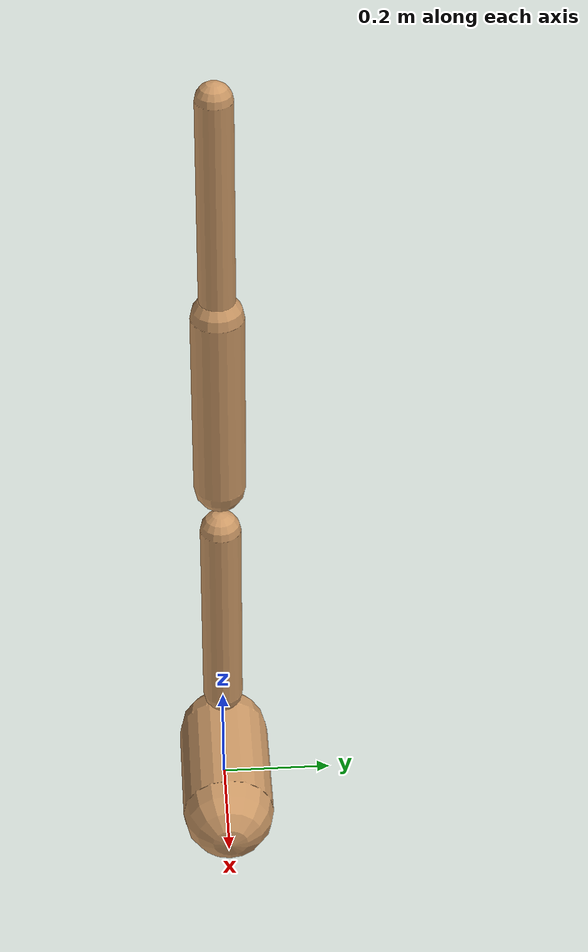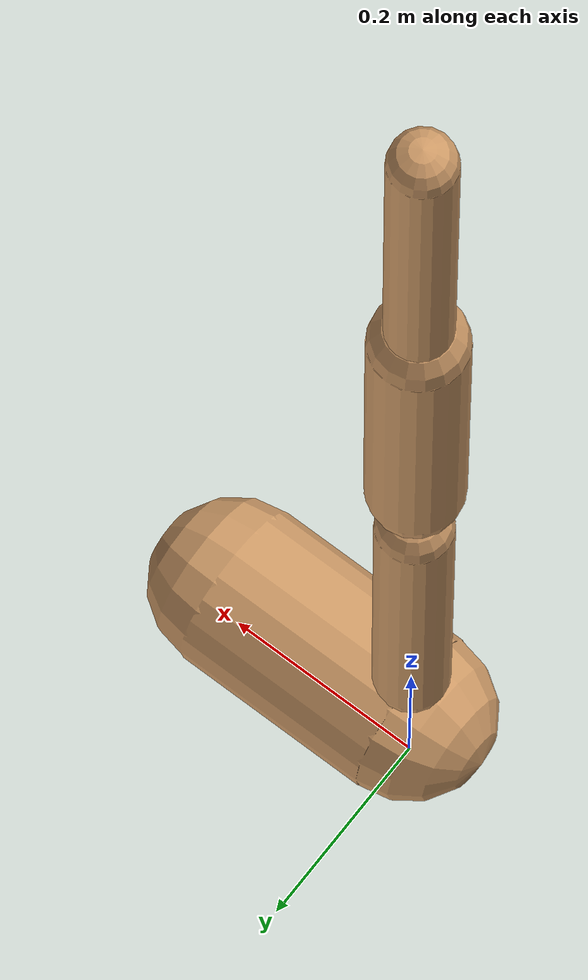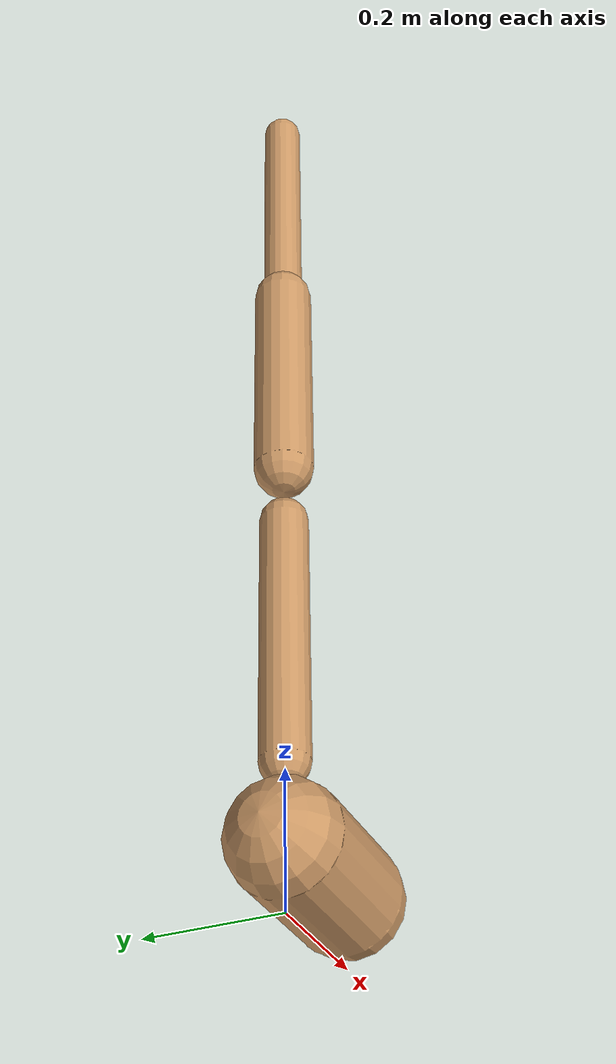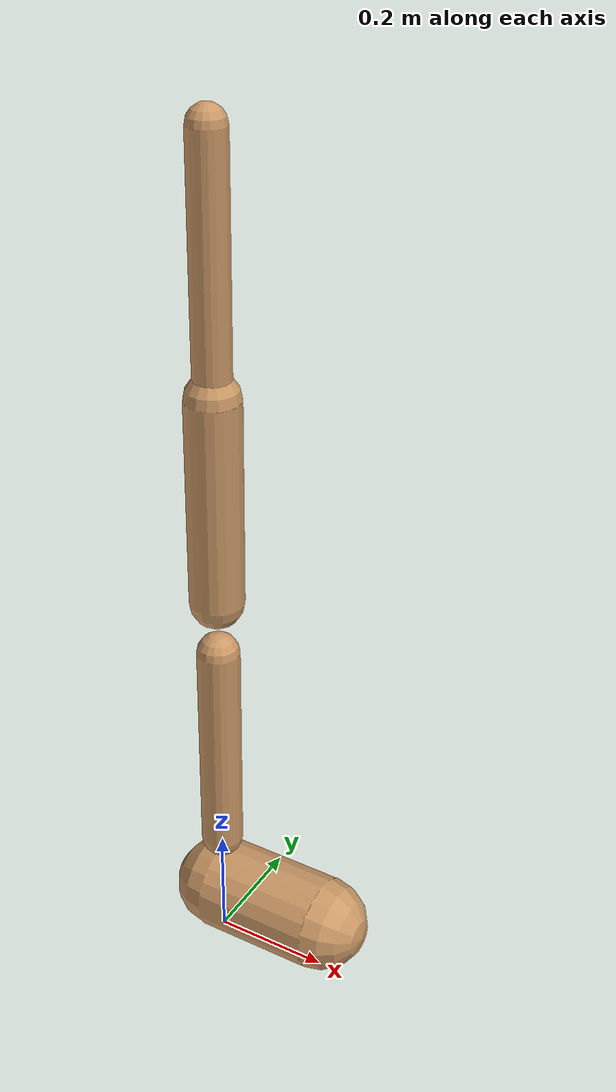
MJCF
<mujoco model="walker2d">
  <compiler angle="degree" coordinate="global" inertiafromgeom="true" />
  <default>
    <joint armature="0.01" damping=".1" limited="true" />
    <geom conaffinity="0" condim="3" contype="1" density="1000" friction="0.8 .1 .1" rgba="0.8 0.6 .4 1" />
  </default>
  <option integrator="RK4" timestep="0.002" />
  <worldbody>

    <body name="torso" pos="0 0 -0.20863880121833836">
      <joint armature="0" axis="1 0 0" damping="0" limited="false" name="ignorex" pos="0 0 0" stiffness="0" type="slide" />
      <joint armature="0" axis="0 0 1" damping="0" limited="false" name="ignorez" pos="0 0 0" ref="1.25" stiffness="0" type="slide" />
      <joint armature="0" axis="0 1 0" damping="0" limited="false" name="ignorey" pos="0 0 0" stiffness="0" type="hinge" />
      <geom fromto="0 0 1.45 0 0 1.05" name="torso_geom" size="0.03064397783002065" type="capsule" />
      <body name="thigh">
        <joint axis="0 -1 0" name="thigh_joint" pos="0 0 1.05" range="-150 0" type="hinge" />
        <geom fromto="0.0 0.0 1.05 0.0 0.0 0.6988289058402655" name="thigh_geom" size="0.045082514733813694" type="capsule" />
        <body name="leg" pos="0.0 0.0 0.09882890584026549">
          <joint axis="0 -1 0" name="leg_joint" pos="0 0 0.6" range="-150 0" type="hinge" />
          <geom fromto="0.0 0.0 0.6 0.0 0.0 0.20980989537807282" name="leg_geom" size="0.036066011787050954" type="capsule" />
          <body name="foot" pos="0.0 0.0 0.10980989537807281">
            <joint axis="0 -1 0" name="foot_joint" pos="0 0 0.1" range="-45 45" type="hinge" />
            <geom fromto="-0.0 0.0 0.1 0.20247542735631596 0.0 0.1" name="foot_geom" size="0.08183307807012401" type="capsule" />
          </body>
        </body>
      </body>

      <body name="thigh_left">
        <joint axis="0 -1 0" name="thigh_left_joint" pos="0 0 1.05" range="-150 0" type="hinge" />
        <geom fromto="0.0 0.0 1.05 0.0 0.0 0.6988289058402655" name="thigh_left_geom" rgba=".7 .3 .6 1" size="0.045082514733813694" type="capsule" />
        <body name="leg_left" pos="0.0 0.0 0.09882890584026549">
          <joint axis="0 -1 0" name="leg_left_joint" pos="0 0 0.6" range="-150 0" type="hinge" />
          <geom fromto="0.0 0.0 0.6 0.0 0.0 0.20980989537807282" name="leg_left_geom" rgba=".7 .3 .6 1" size="0.036066011787050954" type="capsule" />
          <body name="foot_left" pos="0.0 0.0 0.10980989537807281">
            <joint axis="0 -1 0" name="foot_left_joint" pos="0 0 0.1" range="-45 45" type="hinge" />
            <geom fromto="-0.0 0.0 0.1 0.20247542735631596 0.0 0.1" name="foot_left_geom" rgba=".7 .3 .6 1" size="0.08183307807012401" type="capsule" />
          </body>
        </body>
      </body>
    </body>
  </worldbody>
  <actuator>

    <motor ctrllimited="true" ctrlrange="-1.0 1.0" gear="100" joint="thigh_joint" />
    <motor ctrllimited="true" ctrlrange="-1.0 1.0" gear="100" joint="leg_joint" />
    <motor ctrllimited="true" ctrlrange="-1.0 1.0" gear="100" joint="foot_joint" />
    <motor ctrllimited="true" ctrlrange="-1.0 1.0" gear="100" joint="thigh_left_joint" />
    <motor ctrllimited="true" ctrlrange="-1.0 1.0" gear="100" joint="leg_left_joint" />
    <motor ctrllimited="true" ctrlrange="-1.0 1.0" gear="100" joint="foot_left_joint" />

  </actuator>
</mujoco>
